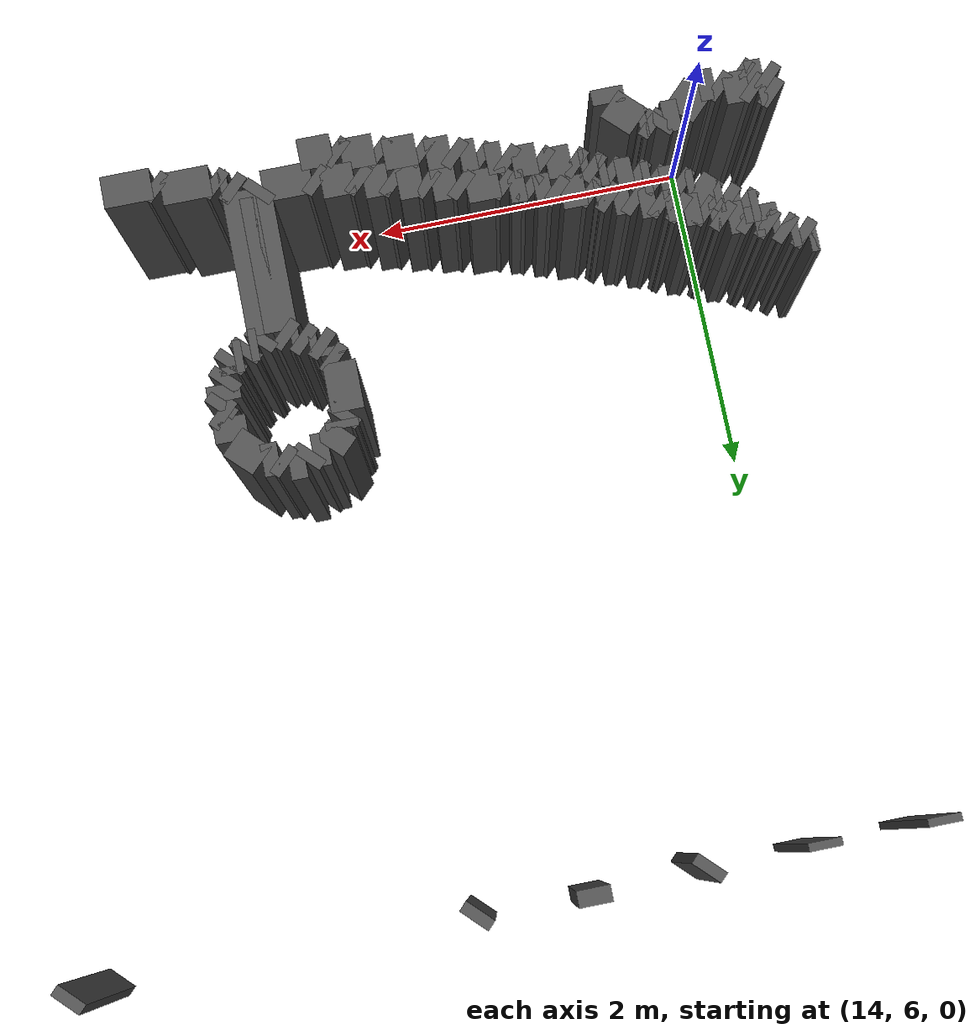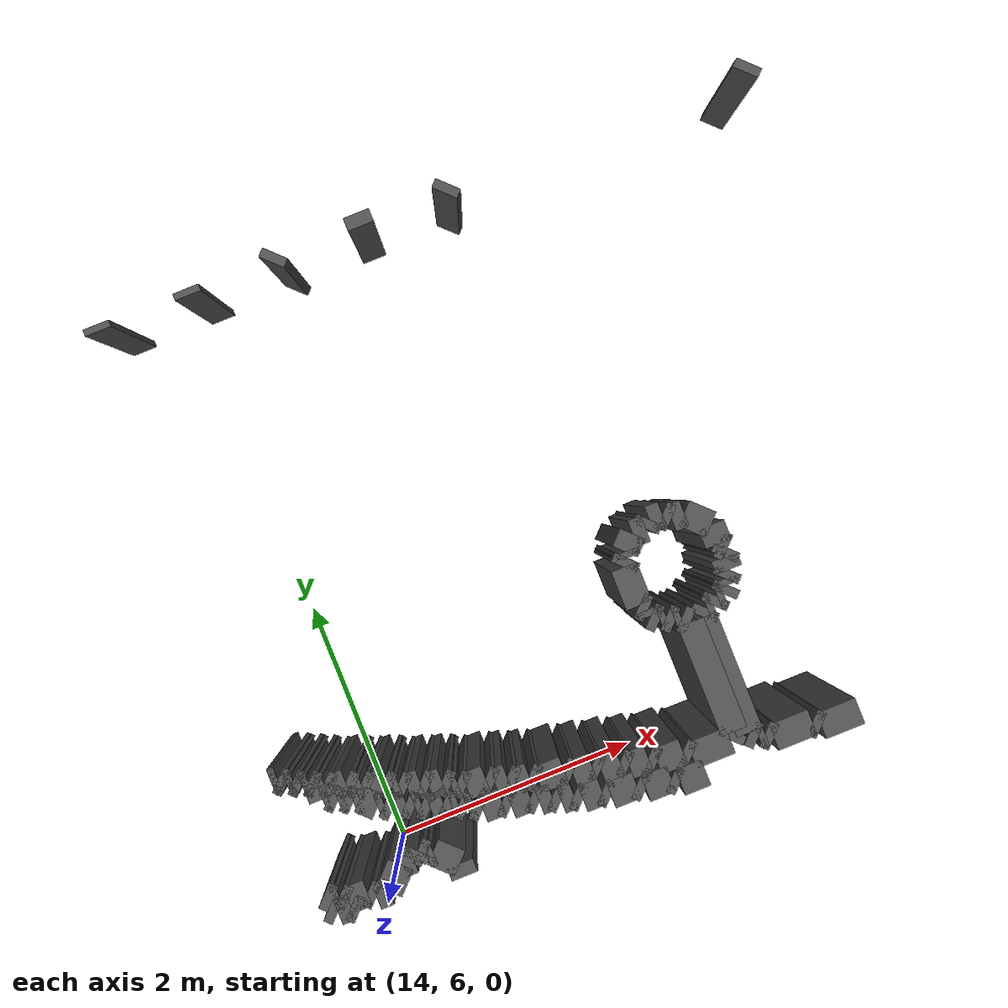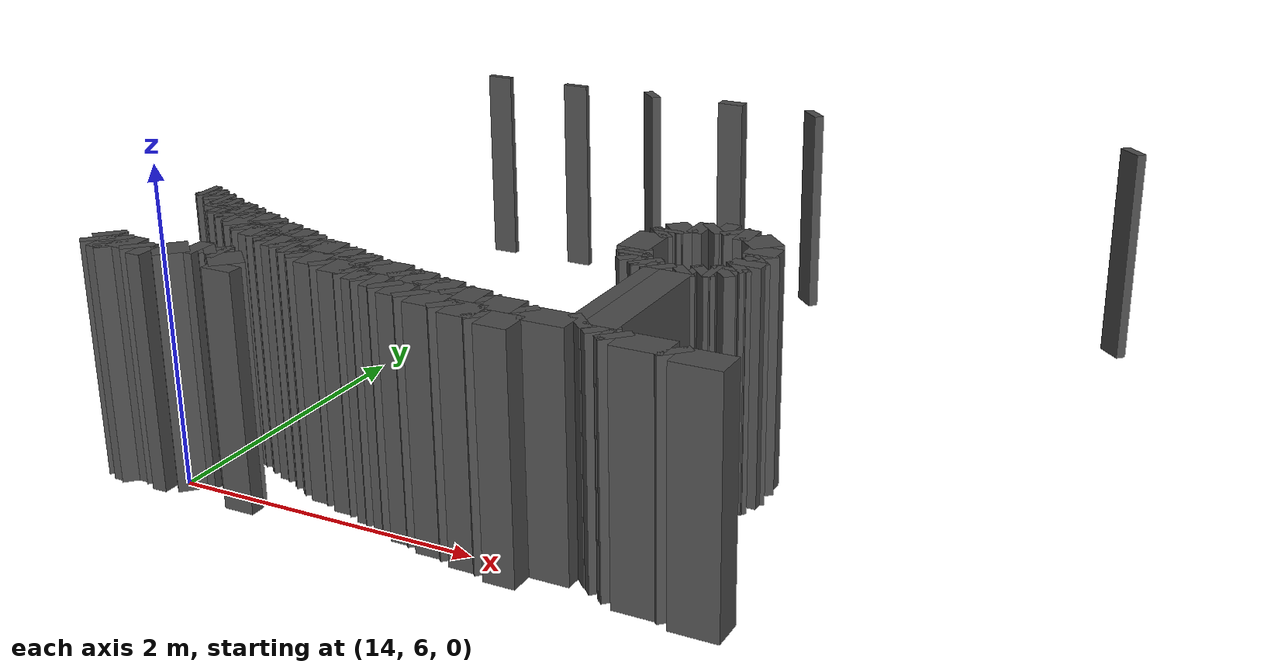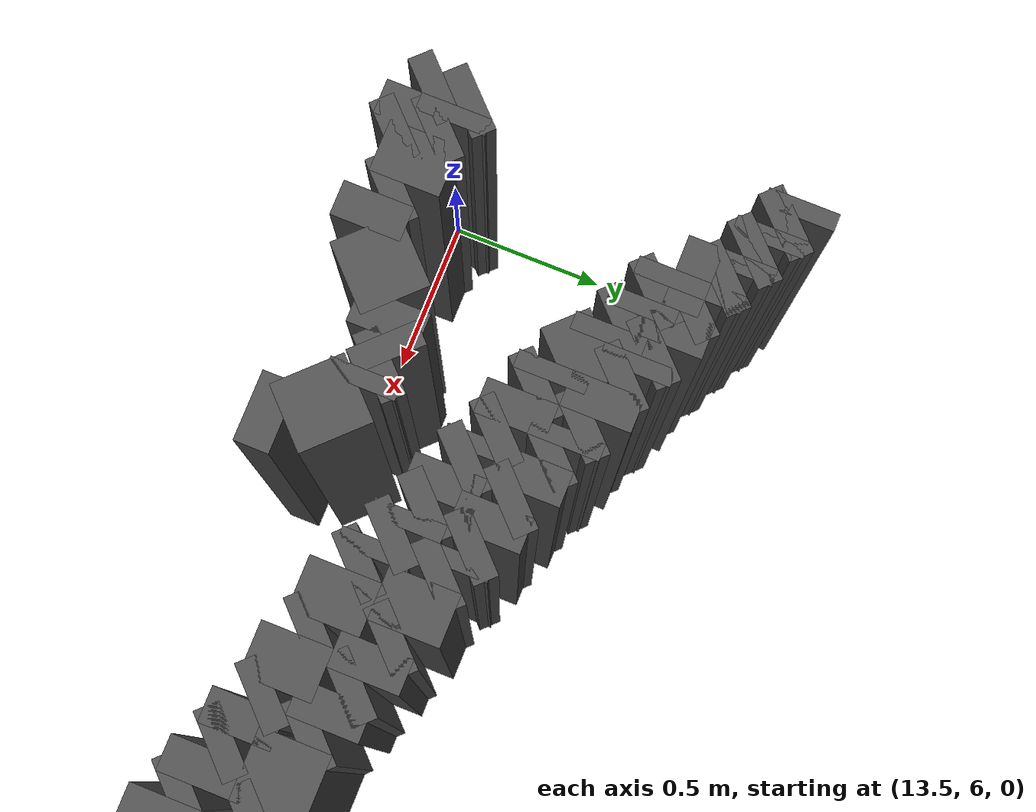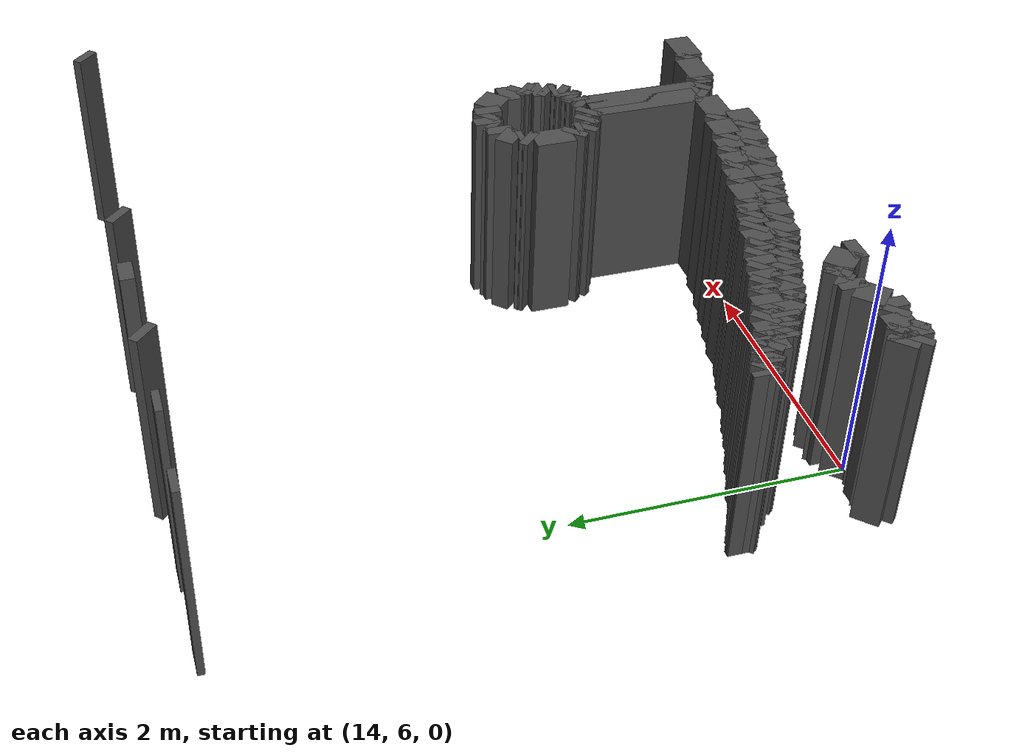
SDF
<sdf version="1.9">
 <model name="generated_walls">
  <static>true</static>
  <link name="wall_140_6">
   <pose>18.575 10.525 0.75 0 0 -2.356</pose>
   <collision name="collision"><geometry><box><size>0.071 0.2 1.5</size></box></geometry></collision>
   <visual name="visual">
    <geometry><box><size>0.071 0.2 1.5</size></box></geometry>
    <material><ambient>0.3 0.3 0.3 1</ambient></material>
   </visual>
  </link>
  <link name="wall_142_0">
   <pose>15.550 10.550 0.75 0 0 1.571</pose>
   <collision name="collision"><geometry><box><size>0.100 0.2 1.5</size></box></geometry></collision>
   <visual name="visual">
    <geometry><box><size>0.100 0.2 1.5</size></box></geometry>
    <material><ambient>0.3 0.3 0.3 1</ambient></material>
   </visual>
  </link>
  <link name="wall_142_3">
   <pose>16.225 10.525 0.75 0 0 -2.356</pose>
   <collision name="collision"><geometry><box><size>0.071 0.2 1.5</size></box></geometry></collision>
   <visual name="visual">
    <geometry><box><size>0.071 0.2 1.5</size></box></geometry>
    <material><ambient>0.3 0.3 0.3 1</ambient></material>
   </visual>
  </link>
  <link name="wall_143_0">
   <pose>14.200 10.525 0.75 0 0 1.571</pose>
   <collision name="collision"><geometry><box><size>0.050 0.2 1.5</size></box></geometry></collision>
   <visual name="visual">
    <geometry><box><size>0.050 0.2 1.5</size></box></geometry>
    <material><ambient>0.3 0.3 0.3 1</ambient></material>
   </visual>
  </link>
  <link name="wall_143_4">
   <pose>14.875 10.525 0.75 0 0 -2.356</pose>
   <collision name="collision"><geometry><box><size>0.071 0.2 1.5</size></box></geometry></collision>
   <visual name="visual">
    <geometry><box><size>0.071 0.2 1.5</size></box></geometry>
    <material><ambient>0.3 0.3 0.3 1</ambient></material>
   </visual>
  </link>
  <link name="wall_144_7">
   <pose>13.500 10.525 0.75 0 0 -1.571</pose>
   <collision name="collision"><geometry><box><size>0.050 0.2 1.5</size></box></geometry></collision>
   <visual name="visual">
    <geometry><box><size>0.050 0.2 1.5</size></box></geometry>
    <material><ambient>0.3 0.3 0.3 1</ambient></material>
   </visual>
  </link>
  <link name="wall_161_49">
   <pose>13.675 5.925 0.75 0 0 2.356</pose>
   <collision name="collision"><geometry><box><size>0.071 0.2 1.5</size></box></geometry></collision>
   <visual name="visual">
    <geometry><box><size>0.071 0.2 1.5</size></box></geometry>
    <material><ambient>0.3 0.3 0.3 1</ambient></material>
   </visual>
  </link>
  <link name="wall_161_50">
   <pose>13.600 5.950 0.75 0 0 3.142</pose>
   <collision name="collision"><geometry><box><size>0.100 0.2 1.5</size></box></geometry></collision>
   <visual name="visual">
    <geometry><box><size>0.100 0.2 1.5</size></box></geometry>
    <material><ambient>0.3 0.3 0.3 1</ambient></material>
   </visual>
  </link>
  <link name="wall_161_51">
   <pose>13.525 5.975 0.75 0 0 2.356</pose>
   <collision name="collision"><geometry><box><size>0.071 0.2 1.5</size></box></geometry></collision>
   <visual name="visual">
    <geometry><box><size>0.071 0.2 1.5</size></box></geometry>
    <material><ambient>0.3 0.3 0.3 1</ambient></material>
   </visual>
  </link>
  <link name="wall_161_1109">
   <pose>13.525 6.075 0.75 0 0 -0.785</pose>
   <collision name="collision"><geometry><box><size>0.071 0.2 1.5</size></box></geometry></collision>
   <visual name="visual">
    <geometry><box><size>0.071 0.2 1.5</size></box></geometry>
    <material><ambient>0.3 0.3 0.3 1</ambient></material>
   </visual>
  </link>
  <link name="wall_161_1110">
   <pose>13.575 6.050 0.75 0 0 0.000</pose>
   <collision name="collision"><geometry><box><size>0.050 0.2 1.5</size></box></geometry></collision>
   <visual name="visual">
    <geometry><box><size>0.050 0.2 1.5</size></box></geometry>
    <material><ambient>0.3 0.3 0.3 1</ambient></material>
   </visual>
  </link>
  <link name="wall_161_1111">
   <pose>13.625 6.025 0.75 0 0 -0.785</pose>
   <collision name="collision"><geometry><box><size>0.071 0.2 1.5</size></box></geometry></collision>
   <visual name="visual">
    <geometry><box><size>0.071 0.2 1.5</size></box></geometry>
    <material><ambient>0.3 0.3 0.3 1</ambient></material>
   </visual>
  </link>
  <link name="wall_161_1112">
   <pose>13.725 6.000 0.75 0 0 0.000</pose>
   <collision name="collision"><geometry><box><size>0.150 0.2 1.5</size></box></geometry></collision>
   <visual name="visual">
    <geometry><box><size>0.150 0.2 1.5</size></box></geometry>
    <material><ambient>0.3 0.3 0.3 1</ambient></material>
   </visual>
  </link>
  <link name="wall_161_1113">
   <pose>13.825 5.975 0.75 0 0 -0.785</pose>
   <collision name="collision"><geometry><box><size>0.071 0.2 1.5</size></box></geometry></collision>
   <visual name="visual">
    <geometry><box><size>0.071 0.2 1.5</size></box></geometry>
    <material><ambient>0.3 0.3 0.3 1</ambient></material>
   </visual>
  </link>
  <link name="wall_161_1114">
   <pose>13.900 5.950 0.75 0 0 0.000</pose>
   <collision name="collision"><geometry><box><size>0.100 0.2 1.5</size></box></geometry></collision>
   <visual name="visual">
    <geometry><box><size>0.100 0.2 1.5</size></box></geometry>
    <material><ambient>0.3 0.3 0.3 1</ambient></material>
   </visual>
  </link>
  <link name="wall_161_1115">
   <pose>14.025 6.025 0.75 0 0 0.785</pose>
   <collision name="collision"><geometry><box><size>0.212 0.2 1.5</size></box></geometry></collision>
   <visual name="visual">
    <geometry><box><size>0.212 0.2 1.5</size></box></geometry>
    <material><ambient>0.3 0.3 0.3 1</ambient></material>
   </visual>
  </link>
  <link name="wall_161_1116">
   <pose>14.150 6.100 0.75 0 0 0.000</pose>
   <collision name="collision"><geometry><box><size>0.100 0.2 1.5</size></box></geometry></collision>
   <visual name="visual">
    <geometry><box><size>0.100 0.2 1.5</size></box></geometry>
    <material><ambient>0.3 0.3 0.3 1</ambient></material>
   </visual>
  </link>
  <link name="wall_161_1117">
   <pose>14.225 6.125 0.75 0 0 0.785</pose>
   <collision name="collision"><geometry><box><size>0.071 0.2 1.5</size></box></geometry></collision>
   <visual name="visual">
    <geometry><box><size>0.071 0.2 1.5</size></box></geometry>
    <material><ambient>0.3 0.3 0.3 1</ambient></material>
   </visual>
  </link>
  <link name="wall_161_1118">
   <pose>14.275 6.125 0.75 0 0 -0.785</pose>
   <collision name="collision"><geometry><box><size>0.071 0.2 1.5</size></box></geometry></collision>
   <visual name="visual">
    <geometry><box><size>0.071 0.2 1.5</size></box></geometry>
    <material><ambient>0.3 0.3 0.3 1</ambient></material>
   </visual>
  </link>
  <link name="wall_161_1119">
   <pose>14.325 6.100 0.75 0 0 0.000</pose>
   <collision name="collision"><geometry><box><size>0.050 0.2 1.5</size></box></geometry></collision>
   <visual name="visual">
    <geometry><box><size>0.050 0.2 1.5</size></box></geometry>
    <material><ambient>0.3 0.3 0.3 1</ambient></material>
   </visual>
  </link>
  <link name="wall_161_1120">
   <pose>14.425 6.025 0.75 0 0 -0.785</pose>
   <collision name="collision"><geometry><box><size>0.212 0.2 1.5</size></box></geometry></collision>
   <visual name="visual">
    <geometry><box><size>0.212 0.2 1.5</size></box></geometry>
    <material><ambient>0.3 0.3 0.3 1</ambient></material>
   </visual>
  </link>
  <link name="wall_161_1121">
   <pose>14.500 5.900 0.75 0 0 -1.571</pose>
   <collision name="collision"><geometry><box><size>0.100 0.2 1.5</size></box></geometry></collision>
   <visual name="visual">
    <geometry><box><size>0.100 0.2 1.5</size></box></geometry>
    <material><ambient>0.3 0.3 0.3 1</ambient></material>
   </visual>
  </link>
  <link name="wall_161_1152">
   <pose>16.300 5.900 0.75 0 0 3.142</pose>
   <collision name="collision"><geometry><box><size>0.200 0.2 1.5</size></box></geometry></collision>
   <visual name="visual">
    <geometry><box><size>0.200 0.2 1.5</size></box></geometry>
    <material><ambient>0.3 0.3 0.3 1</ambient></material>
   </visual>
  </link>
  <link name="wall_161_1153">
   <pose>16.175 5.925 0.75 0 0 2.356</pose>
   <collision name="collision"><geometry><box><size>0.071 0.2 1.5</size></box></geometry></collision>
   <visual name="visual">
    <geometry><box><size>0.071 0.2 1.5</size></box></geometry>
    <material><ambient>0.3 0.3 0.3 1</ambient></material>
   </visual>
  </link>
  <link name="wall_161_1154">
   <pose>16.050 5.950 0.75 0 0 3.142</pose>
   <collision name="collision"><geometry><box><size>0.200 0.2 1.5</size></box></geometry></collision>
   <visual name="visual">
    <geometry><box><size>0.200 0.2 1.5</size></box></geometry>
    <material><ambient>0.3 0.3 0.3 1</ambient></material>
   </visual>
  </link>
  <link name="wall_161_1155">
   <pose>15.925 5.975 0.75 0 0 2.356</pose>
   <collision name="collision"><geometry><box><size>0.071 0.2 1.5</size></box></geometry></collision>
   <visual name="visual">
    <geometry><box><size>0.071 0.2 1.5</size></box></geometry>
    <material><ambient>0.3 0.3 0.3 1</ambient></material>
   </visual>
  </link>
  <link name="wall_161_1156">
   <pose>15.800 6.000 0.75 0 0 3.142</pose>
   <collision name="collision"><geometry><box><size>0.200 0.2 1.5</size></box></geometry></collision>
   <visual name="visual">
    <geometry><box><size>0.200 0.2 1.5</size></box></geometry>
    <material><ambient>0.3 0.3 0.3 1</ambient></material>
   </visual>
  </link>
  <link name="wall_161_1157">
   <pose>15.675 6.025 0.75 0 0 2.356</pose>
   <collision name="collision"><geometry><box><size>0.071 0.2 1.5</size></box></geometry></collision>
   <visual name="visual">
    <geometry><box><size>0.071 0.2 1.5</size></box></geometry>
    <material><ambient>0.3 0.3 0.3 1</ambient></material>
   </visual>
  </link>
  <link name="wall_161_1158">
   <pose>15.575 6.050 0.75 0 0 3.142</pose>
   <collision name="collision"><geometry><box><size>0.150 0.2 1.5</size></box></geometry></collision>
   <visual name="visual">
    <geometry><box><size>0.150 0.2 1.5</size></box></geometry>
    <material><ambient>0.3 0.3 0.3 1</ambient></material>
   </visual>
  </link>
  <link name="wall_161_1159">
   <pose>15.475 6.075 0.75 0 0 2.356</pose>
   <collision name="collision"><geometry><box><size>0.071 0.2 1.5</size></box></geometry></collision>
   <visual name="visual">
    <geometry><box><size>0.071 0.2 1.5</size></box></geometry>
    <material><ambient>0.3 0.3 0.3 1</ambient></material>
   </visual>
  </link>
  <link name="wall_161_1160">
   <pose>15.400 6.100 0.75 0 0 3.142</pose>
   <collision name="collision"><geometry><box><size>0.100 0.2 1.5</size></box></geometry></collision>
   <visual name="visual">
    <geometry><box><size>0.100 0.2 1.5</size></box></geometry>
    <material><ambient>0.3 0.3 0.3 1</ambient></material>
   </visual>
  </link>
  <link name="wall_161_1161">
   <pose>15.325 6.125 0.75 0 0 2.356</pose>
   <collision name="collision"><geometry><box><size>0.071 0.2 1.5</size></box></geometry></collision>
   <visual name="visual">
    <geometry><box><size>0.071 0.2 1.5</size></box></geometry>
    <material><ambient>0.3 0.3 0.3 1</ambient></material>
   </visual>
  </link>
  <link name="wall_161_1162">
   <pose>15.250 6.150 0.75 0 0 3.142</pose>
   <collision name="collision"><geometry><box><size>0.100 0.2 1.5</size></box></geometry></collision>
   <visual name="visual">
    <geometry><box><size>0.100 0.2 1.5</size></box></geometry>
    <material><ambient>0.3 0.3 0.3 1</ambient></material>
   </visual>
  </link>
  <link name="wall_161_1163">
   <pose>15.175 6.175 0.75 0 0 2.356</pose>
   <collision name="collision"><geometry><box><size>0.071 0.2 1.5</size></box></geometry></collision>
   <visual name="visual">
    <geometry><box><size>0.071 0.2 1.5</size></box></geometry>
    <material><ambient>0.3 0.3 0.3 1</ambient></material>
   </visual>
  </link>
  <link name="wall_161_1164">
   <pose>15.075 6.200 0.75 0 0 3.142</pose>
   <collision name="collision"><geometry><box><size>0.150 0.2 1.5</size></box></geometry></collision>
   <visual name="visual">
    <geometry><box><size>0.150 0.2 1.5</size></box></geometry>
    <material><ambient>0.3 0.3 0.3 1</ambient></material>
   </visual>
  </link>
  <link name="wall_161_1165">
   <pose>14.975 6.225 0.75 0 0 2.356</pose>
   <collision name="collision"><geometry><box><size>0.071 0.2 1.5</size></box></geometry></collision>
   <visual name="visual">
    <geometry><box><size>0.071 0.2 1.5</size></box></geometry>
    <material><ambient>0.3 0.3 0.3 1</ambient></material>
   </visual>
  </link>
  <link name="wall_161_1166">
   <pose>14.875 6.250 0.75 0 0 3.142</pose>
   <collision name="collision"><geometry><box><size>0.150 0.2 1.5</size></box></geometry></collision>
   <visual name="visual">
    <geometry><box><size>0.150 0.2 1.5</size></box></geometry>
    <material><ambient>0.3 0.3 0.3 1</ambient></material>
   </visual>
  </link>
  <link name="wall_161_1167">
   <pose>14.775 6.275 0.75 0 0 2.356</pose>
   <collision name="collision"><geometry><box><size>0.071 0.2 1.5</size></box></geometry></collision>
   <visual name="visual">
    <geometry><box><size>0.071 0.2 1.5</size></box></geometry>
    <material><ambient>0.3 0.3 0.3 1</ambient></material>
   </visual>
  </link>
  <link name="wall_161_1168">
   <pose>14.725 6.300 0.75 0 0 3.142</pose>
   <collision name="collision"><geometry><box><size>0.050 0.2 1.5</size></box></geometry></collision>
   <visual name="visual">
    <geometry><box><size>0.050 0.2 1.5</size></box></geometry>
    <material><ambient>0.3 0.3 0.3 1</ambient></material>
   </visual>
  </link>
  <link name="wall_161_1169">
   <pose>14.675 6.325 0.75 0 0 2.356</pose>
   <collision name="collision"><geometry><box><size>0.071 0.2 1.5</size></box></geometry></collision>
   <visual name="visual">
    <geometry><box><size>0.071 0.2 1.5</size></box></geometry>
    <material><ambient>0.3 0.3 0.3 1</ambient></material>
   </visual>
  </link>
  <link name="wall_161_1170">
   <pose>14.625 6.350 0.75 0 0 3.142</pose>
   <collision name="collision"><geometry><box><size>0.050 0.2 1.5</size></box></geometry></collision>
   <visual name="visual">
    <geometry><box><size>0.050 0.2 1.5</size></box></geometry>
    <material><ambient>0.3 0.3 0.3 1</ambient></material>
   </visual>
  </link>
  <link name="wall_161_1171">
   <pose>14.575 6.375 0.75 0 0 2.356</pose>
   <collision name="collision"><geometry><box><size>0.071 0.2 1.5</size></box></geometry></collision>
   <visual name="visual">
    <geometry><box><size>0.071 0.2 1.5</size></box></geometry>
    <material><ambient>0.3 0.3 0.3 1</ambient></material>
   </visual>
  </link>
  <link name="wall_161_1172">
   <pose>14.500 6.400 0.75 0 0 3.142</pose>
   <collision name="collision"><geometry><box><size>0.100 0.2 1.5</size></box></geometry></collision>
   <visual name="visual">
    <geometry><box><size>0.100 0.2 1.5</size></box></geometry>
    <material><ambient>0.3 0.3 0.3 1</ambient></material>
   </visual>
  </link>
  <link name="wall_161_1173">
   <pose>14.425 6.425 0.75 0 0 2.356</pose>
   <collision name="collision"><geometry><box><size>0.071 0.2 1.5</size></box></geometry></collision>
   <visual name="visual">
    <geometry><box><size>0.071 0.2 1.5</size></box></geometry>
    <material><ambient>0.3 0.3 0.3 1</ambient></material>
   </visual>
  </link>
  <link name="wall_161_1174">
   <pose>14.375 6.450 0.75 0 0 3.142</pose>
   <collision name="collision"><geometry><box><size>0.050 0.2 1.5</size></box></geometry></collision>
   <visual name="visual">
    <geometry><box><size>0.050 0.2 1.5</size></box></geometry>
    <material><ambient>0.3 0.3 0.3 1</ambient></material>
   </visual>
  </link>
  <link name="wall_161_1175">
   <pose>14.325 6.475 0.75 0 0 2.356</pose>
   <collision name="collision"><geometry><box><size>0.071 0.2 1.5</size></box></geometry></collision>
   <visual name="visual">
    <geometry><box><size>0.071 0.2 1.5</size></box></geometry>
    <material><ambient>0.3 0.3 0.3 1</ambient></material>
   </visual>
  </link>
  <link name="wall_161_1176">
   <pose>14.250 6.500 0.75 0 0 3.142</pose>
   <collision name="collision"><geometry><box><size>0.100 0.2 1.5</size></box></geometry></collision>
   <visual name="visual">
    <geometry><box><size>0.100 0.2 1.5</size></box></geometry>
    <material><ambient>0.3 0.3 0.3 1</ambient></material>
   </visual>
  </link>
  <link name="wall_161_1177">
   <pose>14.175 6.525 0.75 0 0 2.356</pose>
   <collision name="collision"><geometry><box><size>0.071 0.2 1.5</size></box></geometry></collision>
   <visual name="visual">
    <geometry><box><size>0.071 0.2 1.5</size></box></geometry>
    <material><ambient>0.3 0.3 0.3 1</ambient></material>
   </visual>
  </link>
  <link name="wall_161_1178">
   <pose>14.125 6.550 0.75 0 0 3.142</pose>
   <collision name="collision"><geometry><box><size>0.050 0.2 1.5</size></box></geometry></collision>
   <visual name="visual">
    <geometry><box><size>0.050 0.2 1.5</size></box></geometry>
    <material><ambient>0.3 0.3 0.3 1</ambient></material>
   </visual>
  </link>
  <link name="wall_161_1179">
   <pose>14.050 6.600 0.75 0 0 2.356</pose>
   <collision name="collision"><geometry><box><size>0.141 0.2 1.5</size></box></geometry></collision>
   <visual name="visual">
    <geometry><box><size>0.141 0.2 1.5</size></box></geometry>
    <material><ambient>0.3 0.3 0.3 1</ambient></material>
   </visual>
  </link>
  <link name="wall_161_1180">
   <pose>13.975 6.650 0.75 0 0 3.142</pose>
   <collision name="collision"><geometry><box><size>0.050 0.2 1.5</size></box></geometry></collision>
   <visual name="visual">
    <geometry><box><size>0.050 0.2 1.5</size></box></geometry>
    <material><ambient>0.3 0.3 0.3 1</ambient></material>
   </visual>
  </link>
  <link name="wall_161_1181">
   <pose>13.925 6.675 0.75 0 0 2.356</pose>
   <collision name="collision"><geometry><box><size>0.071 0.2 1.5</size></box></geometry></collision>
   <visual name="visual">
    <geometry><box><size>0.071 0.2 1.5</size></box></geometry>
    <material><ambient>0.3 0.3 0.3 1</ambient></material>
   </visual>
  </link>
  <link name="wall_161_1182">
   <pose>13.875 6.700 0.75 0 0 3.142</pose>
   <collision name="collision"><geometry><box><size>0.050 0.2 1.5</size></box></geometry></collision>
   <visual name="visual">
    <geometry><box><size>0.050 0.2 1.5</size></box></geometry>
    <material><ambient>0.3 0.3 0.3 1</ambient></material>
   </visual>
  </link>
  <link name="wall_161_1183">
   <pose>13.825 6.725 0.75 0 0 2.356</pose>
   <collision name="collision"><geometry><box><size>0.071 0.2 1.5</size></box></geometry></collision>
   <visual name="visual">
    <geometry><box><size>0.071 0.2 1.5</size></box></geometry>
    <material><ambient>0.3 0.3 0.3 1</ambient></material>
   </visual>
  </link>
  <link name="wall_161_1184">
   <pose>13.775 6.750 0.75 0 0 3.142</pose>
   <collision name="collision"><geometry><box><size>0.050 0.2 1.5</size></box></geometry></collision>
   <visual name="visual">
    <geometry><box><size>0.050 0.2 1.5</size></box></geometry>
    <material><ambient>0.3 0.3 0.3 1</ambient></material>
   </visual>
  </link>
  <link name="wall_161_1185">
   <pose>13.750 6.800 0.75 0 0 1.571</pose>
   <collision name="collision"><geometry><box><size>0.100 0.2 1.5</size></box></geometry></collision>
   <visual name="visual">
    <geometry><box><size>0.100 0.2 1.5</size></box></geometry>
    <material><ambient>0.3 0.3 0.3 1</ambient></material>
   </visual>
  </link>
  <link name="wall_161_1186">
   <pose>13.725 6.875 0.75 0 0 2.356</pose>
   <collision name="collision"><geometry><box><size>0.071 0.2 1.5</size></box></geometry></collision>
   <visual name="visual">
    <geometry><box><size>0.071 0.2 1.5</size></box></geometry>
    <material><ambient>0.3 0.3 0.3 1</ambient></material>
   </visual>
  </link>
  <link name="wall_161_1187">
   <pose>13.675 6.900 0.75 0 0 3.142</pose>
   <collision name="collision"><geometry><box><size>0.050 0.2 1.5</size></box></geometry></collision>
   <visual name="visual">
    <geometry><box><size>0.050 0.2 1.5</size></box></geometry>
    <material><ambient>0.3 0.3 0.3 1</ambient></material>
   </visual>
  </link>
  <link name="wall_161_1188">
   <pose>13.625 6.925 0.75 0 0 2.356</pose>
   <collision name="collision"><geometry><box><size>0.071 0.2 1.5</size></box></geometry></collision>
   <visual name="visual">
    <geometry><box><size>0.071 0.2 1.5</size></box></geometry>
    <material><ambient>0.3 0.3 0.3 1</ambient></material>
   </visual>
  </link>
  <link name="wall_161_1189">
   <pose>13.575 6.950 0.75 0 0 3.142</pose>
   <collision name="collision"><geometry><box><size>0.050 0.2 1.5</size></box></geometry></collision>
   <visual name="visual">
    <geometry><box><size>0.050 0.2 1.5</size></box></geometry>
    <material><ambient>0.3 0.3 0.3 1</ambient></material>
   </visual>
  </link>
  <link name="wall_161_1190">
   <pose>13.525 6.975 0.75 0 0 2.356</pose>
   <collision name="collision"><geometry><box><size>0.071 0.2 1.5</size></box></geometry></collision>
   <visual name="visual">
    <geometry><box><size>0.071 0.2 1.5</size></box></geometry>
    <material><ambient>0.3 0.3 0.3 1</ambient></material>
   </visual>
  </link>
  <link name="wall_161_1191">
   <pose>13.475 7.000 0.75 0 0 3.142</pose>
   <collision name="collision"><geometry><box><size>0.050 0.2 1.5</size></box></geometry></collision>
   <visual name="visual">
    <geometry><box><size>0.050 0.2 1.5</size></box></geometry>
    <material><ambient>0.3 0.3 0.3 1</ambient></material>
   </visual>
  </link>
  <link name="wall_161_1192">
   <pose>13.475 7.000 0.75 0 0 0.000</pose>
   <collision name="collision"><geometry><box><size>0.050 0.2 1.5</size></box></geometry></collision>
   <visual name="visual">
    <geometry><box><size>0.050 0.2 1.5</size></box></geometry>
    <material><ambient>0.3 0.3 0.3 1</ambient></material>
   </visual>
  </link>
  <link name="wall_161_1193">
   <pose>13.525 6.975 0.75 0 0 -0.785</pose>
   <collision name="collision"><geometry><box><size>0.071 0.2 1.5</size></box></geometry></collision>
   <visual name="visual">
    <geometry><box><size>0.071 0.2 1.5</size></box></geometry>
    <material><ambient>0.3 0.3 0.3 1</ambient></material>
   </visual>
  </link>
  <link name="wall_161_1194">
   <pose>13.575 6.950 0.75 0 0 0.000</pose>
   <collision name="collision"><geometry><box><size>0.050 0.2 1.5</size></box></geometry></collision>
   <visual name="visual">
    <geometry><box><size>0.050 0.2 1.5</size></box></geometry>
    <material><ambient>0.3 0.3 0.3 1</ambient></material>
   </visual>
  </link>
  <link name="wall_161_1195">
   <pose>13.625 6.925 0.75 0 0 -0.785</pose>
   <collision name="collision"><geometry><box><size>0.071 0.2 1.5</size></box></geometry></collision>
   <visual name="visual">
    <geometry><box><size>0.071 0.2 1.5</size></box></geometry>
    <material><ambient>0.3 0.3 0.3 1</ambient></material>
   </visual>
  </link>
  <link name="wall_161_1196">
   <pose>13.675 6.900 0.75 0 0 0.000</pose>
   <collision name="collision"><geometry><box><size>0.050 0.2 1.5</size></box></geometry></collision>
   <visual name="visual">
    <geometry><box><size>0.050 0.2 1.5</size></box></geometry>
    <material><ambient>0.3 0.3 0.3 1</ambient></material>
   </visual>
  </link>
  <link name="wall_161_1197">
   <pose>13.725 6.875 0.75 0 0 -0.785</pose>
   <collision name="collision"><geometry><box><size>0.071 0.2 1.5</size></box></geometry></collision>
   <visual name="visual">
    <geometry><box><size>0.071 0.2 1.5</size></box></geometry>
    <material><ambient>0.3 0.3 0.3 1</ambient></material>
   </visual>
  </link>
  <link name="wall_161_1198">
   <pose>13.775 6.850 0.75 0 0 0.000</pose>
   <collision name="collision"><geometry><box><size>0.050 0.2 1.5</size></box></geometry></collision>
   <visual name="visual">
    <geometry><box><size>0.050 0.2 1.5</size></box></geometry>
    <material><ambient>0.3 0.3 0.3 1</ambient></material>
   </visual>
  </link>
  <link name="wall_161_1199">
   <pose>13.825 6.825 0.75 0 0 -0.785</pose>
   <collision name="collision"><geometry><box><size>0.071 0.2 1.5</size></box></geometry></collision>
   <visual name="visual">
    <geometry><box><size>0.071 0.2 1.5</size></box></geometry>
    <material><ambient>0.3 0.3 0.3 1</ambient></material>
   </visual>
  </link>
  <link name="wall_161_1200">
   <pose>13.900 6.800 0.75 0 0 0.000</pose>
   <collision name="collision"><geometry><box><size>0.100 0.2 1.5</size></box></geometry></collision>
   <visual name="visual">
    <geometry><box><size>0.100 0.2 1.5</size></box></geometry>
    <material><ambient>0.3 0.3 0.3 1</ambient></material>
   </visual>
  </link>
  <link name="wall_161_1201">
   <pose>13.975 6.775 0.75 0 0 -0.785</pose>
   <collision name="collision"><geometry><box><size>0.071 0.2 1.5</size></box></geometry></collision>
   <visual name="visual">
    <geometry><box><size>0.071 0.2 1.5</size></box></geometry>
    <material><ambient>0.3 0.3 0.3 1</ambient></material>
   </visual>
  </link>
  <link name="wall_161_1202">
   <pose>14.025 6.750 0.75 0 0 0.000</pose>
   <collision name="collision"><geometry><box><size>0.050 0.2 1.5</size></box></geometry></collision>
   <visual name="visual">
    <geometry><box><size>0.050 0.2 1.5</size></box></geometry>
    <material><ambient>0.3 0.3 0.3 1</ambient></material>
   </visual>
  </link>
  <link name="wall_161_1203">
   <pose>14.075 6.725 0.75 0 0 -0.785</pose>
   <collision name="collision"><geometry><box><size>0.071 0.2 1.5</size></box></geometry></collision>
   <visual name="visual">
    <geometry><box><size>0.071 0.2 1.5</size></box></geometry>
    <material><ambient>0.3 0.3 0.3 1</ambient></material>
   </visual>
  </link>
  <link name="wall_161_1204">
   <pose>14.150 6.700 0.75 0 0 0.000</pose>
   <collision name="collision"><geometry><box><size>0.100 0.2 1.5</size></box></geometry></collision>
   <visual name="visual">
    <geometry><box><size>0.100 0.2 1.5</size></box></geometry>
    <material><ambient>0.3 0.3 0.3 1</ambient></material>
   </visual>
  </link>
  <link name="wall_161_1205">
   <pose>14.225 6.675 0.75 0 0 -0.785</pose>
   <collision name="collision"><geometry><box><size>0.071 0.2 1.5</size></box></geometry></collision>
   <visual name="visual">
    <geometry><box><size>0.071 0.2 1.5</size></box></geometry>
    <material><ambient>0.3 0.3 0.3 1</ambient></material>
   </visual>
  </link>
  <link name="wall_161_1206">
   <pose>14.275 6.650 0.75 0 0 0.000</pose>
   <collision name="collision"><geometry><box><size>0.050 0.2 1.5</size></box></geometry></collision>
   <visual name="visual">
    <geometry><box><size>0.050 0.2 1.5</size></box></geometry>
    <material><ambient>0.3 0.3 0.3 1</ambient></material>
   </visual>
  </link>
  <link name="wall_161_1207">
   <pose>14.325 6.625 0.75 0 0 -0.785</pose>
   <collision name="collision"><geometry><box><size>0.071 0.2 1.5</size></box></geometry></collision>
   <visual name="visual">
    <geometry><box><size>0.071 0.2 1.5</size></box></geometry>
    <material><ambient>0.3 0.3 0.3 1</ambient></material>
   </visual>
  </link>
  <link name="wall_161_1208">
   <pose>14.400 6.600 0.75 0 0 0.000</pose>
   <collision name="collision"><geometry><box><size>0.100 0.2 1.5</size></box></geometry></collision>
   <visual name="visual">
    <geometry><box><size>0.100 0.2 1.5</size></box></geometry>
    <material><ambient>0.3 0.3 0.3 1</ambient></material>
   </visual>
  </link>
  <link name="wall_161_1209">
   <pose>14.475 6.575 0.75 0 0 -0.785</pose>
   <collision name="collision"><geometry><box><size>0.071 0.2 1.5</size></box></geometry></collision>
   <visual name="visual">
    <geometry><box><size>0.071 0.2 1.5</size></box></geometry>
    <material><ambient>0.3 0.3 0.3 1</ambient></material>
   </visual>
  </link>
  <link name="wall_161_1210">
   <pose>14.550 6.550 0.75 0 0 0.000</pose>
   <collision name="collision"><geometry><box><size>0.100 0.2 1.5</size></box></geometry></collision>
   <visual name="visual">
    <geometry><box><size>0.100 0.2 1.5</size></box></geometry>
    <material><ambient>0.3 0.3 0.3 1</ambient></material>
   </visual>
  </link>
  <link name="wall_161_1211">
   <pose>14.625 6.525 0.75 0 0 -0.785</pose>
   <collision name="collision"><geometry><box><size>0.071 0.2 1.5</size></box></geometry></collision>
   <visual name="visual">
    <geometry><box><size>0.071 0.2 1.5</size></box></geometry>
    <material><ambient>0.3 0.3 0.3 1</ambient></material>
   </visual>
  </link>
  <link name="wall_161_1212">
   <pose>14.675 6.500 0.75 0 0 0.000</pose>
   <collision name="collision"><geometry><box><size>0.050 0.2 1.5</size></box></geometry></collision>
   <visual name="visual">
    <geometry><box><size>0.050 0.2 1.5</size></box></geometry>
    <material><ambient>0.3 0.3 0.3 1</ambient></material>
   </visual>
  </link>
  <link name="wall_161_1213">
   <pose>14.725 6.475 0.75 0 0 -0.785</pose>
   <collision name="collision"><geometry><box><size>0.071 0.2 1.5</size></box></geometry></collision>
   <visual name="visual">
    <geometry><box><size>0.071 0.2 1.5</size></box></geometry>
    <material><ambient>0.3 0.3 0.3 1</ambient></material>
   </visual>
  </link>
  <link name="wall_161_1214">
   <pose>14.825 6.450 0.75 0 0 0.000</pose>
   <collision name="collision"><geometry><box><size>0.150 0.2 1.5</size></box></geometry></collision>
   <visual name="visual">
    <geometry><box><size>0.150 0.2 1.5</size></box></geometry>
    <material><ambient>0.3 0.3 0.3 1</ambient></material>
   </visual>
  </link>
  <link name="wall_161_1215">
   <pose>14.925 6.425 0.75 0 0 -0.785</pose>
   <collision name="collision"><geometry><box><size>0.071 0.2 1.5</size></box></geometry></collision>
   <visual name="visual">
    <geometry><box><size>0.071 0.2 1.5</size></box></geometry>
    <material><ambient>0.3 0.3 0.3 1</ambient></material>
   </visual>
  </link>
  <link name="wall_161_1216">
   <pose>15.000 6.400 0.75 0 0 0.000</pose>
   <collision name="collision"><geometry><box><size>0.100 0.2 1.5</size></box></geometry></collision>
   <visual name="visual">
    <geometry><box><size>0.100 0.2 1.5</size></box></geometry>
    <material><ambient>0.3 0.3 0.3 1</ambient></material>
   </visual>
  </link>
  <link name="wall_161_1217">
   <pose>15.075 6.375 0.75 0 0 -0.785</pose>
   <collision name="collision"><geometry><box><size>0.071 0.2 1.5</size></box></geometry></collision>
   <visual name="visual">
    <geometry><box><size>0.071 0.2 1.5</size></box></geometry>
    <material><ambient>0.3 0.3 0.3 1</ambient></material>
   </visual>
  </link>
  <link name="wall_161_1218">
   <pose>15.150 6.350 0.75 0 0 0.000</pose>
   <collision name="collision"><geometry><box><size>0.100 0.2 1.5</size></box></geometry></collision>
   <visual name="visual">
    <geometry><box><size>0.100 0.2 1.5</size></box></geometry>
    <material><ambient>0.3 0.3 0.3 1</ambient></material>
   </visual>
  </link>
  <link name="wall_161_1219">
   <pose>15.225 6.325 0.75 0 0 -0.785</pose>
   <collision name="collision"><geometry><box><size>0.071 0.2 1.5</size></box></geometry></collision>
   <visual name="visual">
    <geometry><box><size>0.071 0.2 1.5</size></box></geometry>
    <material><ambient>0.3 0.3 0.3 1</ambient></material>
   </visual>
  </link>
  <link name="wall_161_1220">
   <pose>15.350 6.300 0.75 0 0 0.000</pose>
   <collision name="collision"><geometry><box><size>0.200 0.2 1.5</size></box></geometry></collision>
   <visual name="visual">
    <geometry><box><size>0.200 0.2 1.5</size></box></geometry>
    <material><ambient>0.3 0.3 0.3 1</ambient></material>
   </visual>
  </link>
  <link name="wall_161_1221">
   <pose>15.475 6.275 0.75 0 0 -0.785</pose>
   <collision name="collision"><geometry><box><size>0.071 0.2 1.5</size></box></geometry></collision>
   <visual name="visual">
    <geometry><box><size>0.071 0.2 1.5</size></box></geometry>
    <material><ambient>0.3 0.3 0.3 1</ambient></material>
   </visual>
  </link>
  <link name="wall_161_1222">
   <pose>15.575 6.250 0.75 0 0 0.000</pose>
   <collision name="collision"><geometry><box><size>0.150 0.2 1.5</size></box></geometry></collision>
   <visual name="visual">
    <geometry><box><size>0.150 0.2 1.5</size></box></geometry>
    <material><ambient>0.3 0.3 0.3 1</ambient></material>
   </visual>
  </link>
  <link name="wall_161_1223">
   <pose>15.675 6.225 0.75 0 0 -0.785</pose>
   <collision name="collision"><geometry><box><size>0.071 0.2 1.5</size></box></geometry></collision>
   <visual name="visual">
    <geometry><box><size>0.071 0.2 1.5</size></box></geometry>
    <material><ambient>0.3 0.3 0.3 1</ambient></material>
   </visual>
  </link>
  <link name="wall_161_1224">
   <pose>15.775 6.200 0.75 0 0 0.000</pose>
   <collision name="collision"><geometry><box><size>0.150 0.2 1.5</size></box></geometry></collision>
   <visual name="visual">
    <geometry><box><size>0.150 0.2 1.5</size></box></geometry>
    <material><ambient>0.3 0.3 0.3 1</ambient></material>
   </visual>
  </link>
  <link name="wall_161_1225">
   <pose>15.875 6.175 0.75 0 0 -0.785</pose>
   <collision name="collision"><geometry><box><size>0.071 0.2 1.5</size></box></geometry></collision>
   <visual name="visual">
    <geometry><box><size>0.071 0.2 1.5</size></box></geometry>
    <material><ambient>0.3 0.3 0.3 1</ambient></material>
   </visual>
  </link>
  <link name="wall_161_1226">
   <pose>15.975 6.150 0.75 0 0 0.000</pose>
   <collision name="collision"><geometry><box><size>0.150 0.2 1.5</size></box></geometry></collision>
   <visual name="visual">
    <geometry><box><size>0.150 0.2 1.5</size></box></geometry>
    <material><ambient>0.3 0.3 0.3 1</ambient></material>
   </visual>
  </link>
  <link name="wall_161_1227">
   <pose>16.075 6.125 0.75 0 0 -0.785</pose>
   <collision name="collision"><geometry><box><size>0.071 0.2 1.5</size></box></geometry></collision>
   <visual name="visual">
    <geometry><box><size>0.071 0.2 1.5</size></box></geometry>
    <material><ambient>0.3 0.3 0.3 1</ambient></material>
   </visual>
  </link>
  <link name="wall_161_1228">
   <pose>16.200 6.100 0.75 0 0 0.000</pose>
   <collision name="collision"><geometry><box><size>0.200 0.2 1.5</size></box></geometry></collision>
   <visual name="visual">
    <geometry><box><size>0.200 0.2 1.5</size></box></geometry>
    <material><ambient>0.3 0.3 0.3 1</ambient></material>
   </visual>
  </link>
  <link name="wall_161_1229">
   <pose>16.325 6.075 0.75 0 0 -0.785</pose>
   <collision name="collision"><geometry><box><size>0.071 0.2 1.5</size></box></geometry></collision>
   <visual name="visual">
    <geometry><box><size>0.071 0.2 1.5</size></box></geometry>
    <material><ambient>0.3 0.3 0.3 1</ambient></material>
   </visual>
  </link>
  <link name="wall_161_1230">
   <pose>16.500 6.050 0.75 0 0 0.000</pose>
   <collision name="collision"><geometry><box><size>0.300 0.2 1.5</size></box></geometry></collision>
   <visual name="visual">
    <geometry><box><size>0.300 0.2 1.5</size></box></geometry>
    <material><ambient>0.3 0.3 0.3 1</ambient></material>
   </visual>
  </link>
  <link name="wall_161_1231">
   <pose>16.675 6.075 0.75 0 0 0.785</pose>
   <collision name="collision"><geometry><box><size>0.071 0.2 1.5</size></box></geometry></collision>
   <visual name="visual">
    <geometry><box><size>0.071 0.2 1.5</size></box></geometry>
    <material><ambient>0.3 0.3 0.3 1</ambient></material>
   </visual>
  </link>
  <link name="wall_161_1232">
   <pose>16.700 6.525 0.75 0 0 1.571</pose>
   <collision name="collision"><geometry><box><size>0.850 0.2 1.5</size></box></geometry></collision>
   <visual name="visual">
    <geometry><box><size>0.850 0.2 1.5</size></box></geometry>
    <material><ambient>0.3 0.3 0.3 1</ambient></material>
   </visual>
  </link>
  <link name="wall_161_1233">
   <pose>16.675 6.975 0.75 0 0 2.356</pose>
   <collision name="collision"><geometry><box><size>0.071 0.2 1.5</size></box></geometry></collision>
   <visual name="visual">
    <geometry><box><size>0.071 0.2 1.5</size></box></geometry>
    <material><ambient>0.3 0.3 0.3 1</ambient></material>
   </visual>
  </link>
  <link name="wall_161_1234">
   <pose>16.625 7.000 0.75 0 0 3.142</pose>
   <collision name="collision"><geometry><box><size>0.050 0.2 1.5</size></box></geometry></collision>
   <visual name="visual">
    <geometry><box><size>0.050 0.2 1.5</size></box></geometry>
    <material><ambient>0.3 0.3 0.3 1</ambient></material>
   </visual>
  </link>
  <link name="wall_161_1235">
   <pose>16.575 7.025 0.75 0 0 2.356</pose>
   <collision name="collision"><geometry><box><size>0.071 0.2 1.5</size></box></geometry></collision>
   <visual name="visual">
    <geometry><box><size>0.071 0.2 1.5</size></box></geometry>
    <material><ambient>0.3 0.3 0.3 1</ambient></material>
   </visual>
  </link>
  <link name="wall_161_1236">
   <pose>16.525 7.050 0.75 0 0 3.142</pose>
   <collision name="collision"><geometry><box><size>0.050 0.2 1.5</size></box></geometry></collision>
   <visual name="visual">
    <geometry><box><size>0.050 0.2 1.5</size></box></geometry>
    <material><ambient>0.3 0.3 0.3 1</ambient></material>
   </visual>
  </link>
  <link name="wall_161_1237">
   <pose>16.475 7.075 0.75 0 0 2.356</pose>
   <collision name="collision"><geometry><box><size>0.071 0.2 1.5</size></box></geometry></collision>
   <visual name="visual">
    <geometry><box><size>0.071 0.2 1.5</size></box></geometry>
    <material><ambient>0.3 0.3 0.3 1</ambient></material>
   </visual>
  </link>
  <link name="wall_161_1238">
   <pose>16.450 7.125 0.75 0 0 1.571</pose>
   <collision name="collision"><geometry><box><size>0.050 0.2 1.5</size></box></geometry></collision>
   <visual name="visual">
    <geometry><box><size>0.050 0.2 1.5</size></box></geometry>
    <material><ambient>0.3 0.3 0.3 1</ambient></material>
   </visual>
  </link>
  <link name="wall_161_1239">
   <pose>16.425 7.175 0.75 0 0 2.356</pose>
   <collision name="collision"><geometry><box><size>0.071 0.2 1.5</size></box></geometry></collision>
   <visual name="visual">
    <geometry><box><size>0.071 0.2 1.5</size></box></geometry>
    <material><ambient>0.3 0.3 0.3 1</ambient></material>
   </visual>
  </link>
  <link name="wall_161_1240">
   <pose>16.400 7.350 0.75 0 0 1.571</pose>
   <collision name="collision"><geometry><box><size>0.300 0.2 1.5</size></box></geometry></collision>
   <visual name="visual">
    <geometry><box><size>0.300 0.2 1.5</size></box></geometry>
    <material><ambient>0.3 0.3 0.3 1</ambient></material>
   </visual>
  </link>
  <link name="wall_161_1241">
   <pose>16.425 7.525 0.75 0 0 0.785</pose>
   <collision name="collision"><geometry><box><size>0.071 0.2 1.5</size></box></geometry></collision>
   <visual name="visual">
    <geometry><box><size>0.071 0.2 1.5</size></box></geometry>
    <material><ambient>0.3 0.3 0.3 1</ambient></material>
   </visual>
  </link>
  <link name="wall_161_1242">
   <pose>16.450 7.575 0.75 0 0 1.571</pose>
   <collision name="collision"><geometry><box><size>0.050 0.2 1.5</size></box></geometry></collision>
   <visual name="visual">
    <geometry><box><size>0.050 0.2 1.5</size></box></geometry>
    <material><ambient>0.3 0.3 0.3 1</ambient></material>
   </visual>
  </link>
  <link name="wall_161_1243">
   <pose>16.500 7.650 0.75 0 0 0.785</pose>
   <collision name="collision"><geometry><box><size>0.141 0.2 1.5</size></box></geometry></collision>
   <visual name="visual">
    <geometry><box><size>0.141 0.2 1.5</size></box></geometry>
    <material><ambient>0.3 0.3 0.3 1</ambient></material>
   </visual>
  </link>
  <link name="wall_161_1244">
   <pose>16.600 7.700 0.75 0 0 0.000</pose>
   <collision name="collision"><geometry><box><size>0.100 0.2 1.5</size></box></geometry></collision>
   <visual name="visual">
    <geometry><box><size>0.100 0.2 1.5</size></box></geometry>
    <material><ambient>0.3 0.3 0.3 1</ambient></material>
   </visual>
  </link>
  <link name="wall_161_1245">
   <pose>16.675 7.725 0.75 0 0 0.785</pose>
   <collision name="collision"><geometry><box><size>0.071 0.2 1.5</size></box></geometry></collision>
   <visual name="visual">
    <geometry><box><size>0.071 0.2 1.5</size></box></geometry>
    <material><ambient>0.3 0.3 0.3 1</ambient></material>
   </visual>
  </link>
  <link name="wall_161_1246">
   <pose>16.750 7.750 0.75 0 0 0.000</pose>
   <collision name="collision"><geometry><box><size>0.100 0.2 1.5</size></box></geometry></collision>
   <visual name="visual">
    <geometry><box><size>0.100 0.2 1.5</size></box></geometry>
    <material><ambient>0.3 0.3 0.3 1</ambient></material>
   </visual>
  </link>
  <link name="wall_161_1247">
   <pose>16.825 7.725 0.75 0 0 -0.785</pose>
   <collision name="collision"><geometry><box><size>0.071 0.2 1.5</size></box></geometry></collision>
   <visual name="visual">
    <geometry><box><size>0.071 0.2 1.5</size></box></geometry>
    <material><ambient>0.3 0.3 0.3 1</ambient></material>
   </visual>
  </link>
  <link name="wall_161_1248">
   <pose>16.900 7.700 0.75 0 0 0.000</pose>
   <collision name="collision"><geometry><box><size>0.100 0.2 1.5</size></box></geometry></collision>
   <visual name="visual">
    <geometry><box><size>0.100 0.2 1.5</size></box></geometry>
    <material><ambient>0.3 0.3 0.3 1</ambient></material>
   </visual>
  </link>
  <link name="wall_161_1249">
   <pose>17.025 7.625 0.75 0 0 -0.785</pose>
   <collision name="collision"><geometry><box><size>0.212 0.2 1.5</size></box></geometry></collision>
   <visual name="visual">
    <geometry><box><size>0.212 0.2 1.5</size></box></geometry>
    <material><ambient>0.3 0.3 0.3 1</ambient></material>
   </visual>
  </link>
  <link name="wall_161_1250">
   <pose>17.100 7.475 0.75 0 0 -1.571</pose>
   <collision name="collision"><geometry><box><size>0.150 0.2 1.5</size></box></geometry></collision>
   <visual name="visual">
    <geometry><box><size>0.150 0.2 1.5</size></box></geometry>
    <material><ambient>0.3 0.3 0.3 1</ambient></material>
   </visual>
  </link>
  <link name="wall_161_1251">
   <pose>17.125 7.375 0.75 0 0 -0.785</pose>
   <collision name="collision"><geometry><box><size>0.071 0.2 1.5</size></box></geometry></collision>
   <visual name="visual">
    <geometry><box><size>0.071 0.2 1.5</size></box></geometry>
    <material><ambient>0.3 0.3 0.3 1</ambient></material>
   </visual>
  </link>
  <link name="wall_161_1252">
   <pose>17.125 7.325 0.75 0 0 -2.356</pose>
   <collision name="collision"><geometry><box><size>0.071 0.2 1.5</size></box></geometry></collision>
   <visual name="visual">
    <geometry><box><size>0.071 0.2 1.5</size></box></geometry>
    <material><ambient>0.3 0.3 0.3 1</ambient></material>
   </visual>
  </link>
  <link name="wall_161_1253">
   <pose>17.100 7.250 0.75 0 0 -1.571</pose>
   <collision name="collision"><geometry><box><size>0.100 0.2 1.5</size></box></geometry></collision>
   <visual name="visual">
    <geometry><box><size>0.100 0.2 1.5</size></box></geometry>
    <material><ambient>0.3 0.3 0.3 1</ambient></material>
   </visual>
  </link>
  <link name="wall_161_1254">
   <pose>17.075 7.175 0.75 0 0 -2.356</pose>
   <collision name="collision"><geometry><box><size>0.071 0.2 1.5</size></box></geometry></collision>
   <visual name="visual">
    <geometry><box><size>0.071 0.2 1.5</size></box></geometry>
    <material><ambient>0.3 0.3 0.3 1</ambient></material>
   </visual>
  </link>
  <link name="wall_161_1255">
   <pose>17.050 7.125 0.75 0 0 -1.571</pose>
   <collision name="collision"><geometry><box><size>0.050 0.2 1.5</size></box></geometry></collision>
   <visual name="visual">
    <geometry><box><size>0.050 0.2 1.5</size></box></geometry>
    <material><ambient>0.3 0.3 0.3 1</ambient></material>
   </visual>
  </link>
  <link name="wall_161_1256">
   <pose>17.025 7.075 0.75 0 0 -2.356</pose>
   <collision name="collision"><geometry><box><size>0.071 0.2 1.5</size></box></geometry></collision>
   <visual name="visual">
    <geometry><box><size>0.071 0.2 1.5</size></box></geometry>
    <material><ambient>0.3 0.3 0.3 1</ambient></material>
   </visual>
  </link>
  <link name="wall_161_1257">
   <pose>16.975 7.050 0.75 0 0 3.142</pose>
   <collision name="collision"><geometry><box><size>0.050 0.2 1.5</size></box></geometry></collision>
   <visual name="visual">
    <geometry><box><size>0.050 0.2 1.5</size></box></geometry>
    <material><ambient>0.3 0.3 0.3 1</ambient></material>
   </visual>
  </link>
  <link name="wall_161_1258">
   <pose>16.925 7.025 0.75 0 0 -2.356</pose>
   <collision name="collision"><geometry><box><size>0.071 0.2 1.5</size></box></geometry></collision>
   <visual name="visual">
    <geometry><box><size>0.071 0.2 1.5</size></box></geometry>
    <material><ambient>0.3 0.3 0.3 1</ambient></material>
   </visual>
  </link>
  <link name="wall_161_1259">
   <pose>16.875 7.000 0.75 0 0 3.142</pose>
   <collision name="collision"><geometry><box><size>0.050 0.2 1.5</size></box></geometry></collision>
   <visual name="visual">
    <geometry><box><size>0.050 0.2 1.5</size></box></geometry>
    <material><ambient>0.3 0.3 0.3 1</ambient></material>
   </visual>
  </link>
  <link name="wall_161_1260">
   <pose>16.825 6.975 0.75 0 0 -2.356</pose>
   <collision name="collision"><geometry><box><size>0.071 0.2 1.5</size></box></geometry></collision>
   <visual name="visual">
    <geometry><box><size>0.071 0.2 1.5</size></box></geometry>
    <material><ambient>0.3 0.3 0.3 1</ambient></material>
   </visual>
  </link>
  <link name="wall_161_1261">
   <pose>16.800 6.500 0.75 0 0 -1.571</pose>
   <collision name="collision"><geometry><box><size>0.900 0.2 1.5</size></box></geometry></collision>
   <visual name="visual">
    <geometry><box><size>0.900 0.2 1.5</size></box></geometry>
    <material><ambient>0.3 0.3 0.3 1</ambient></material>
   </visual>
  </link>
  <link name="wall_161_1262">
   <pose>16.825 6.025 0.75 0 0 -0.785</pose>
   <collision name="collision"><geometry><box><size>0.071 0.2 1.5</size></box></geometry></collision>
   <visual name="visual">
    <geometry><box><size>0.071 0.2 1.5</size></box></geometry>
    <material><ambient>0.3 0.3 0.3 1</ambient></material>
   </visual>
  </link>
  <link name="wall_161_1263">
   <pose>16.875 6.000 0.75 0 0 0.000</pose>
   <collision name="collision"><geometry><box><size>0.050 0.2 1.5</size></box></geometry></collision>
   <visual name="visual">
    <geometry><box><size>0.050 0.2 1.5</size></box></geometry>
    <material><ambient>0.3 0.3 0.3 1</ambient></material>
   </visual>
  </link>
  <link name="wall_161_1264">
   <pose>16.925 5.975 0.75 0 0 -0.785</pose>
   <collision name="collision"><geometry><box><size>0.071 0.2 1.5</size></box></geometry></collision>
   <visual name="visual">
    <geometry><box><size>0.071 0.2 1.5</size></box></geometry>
    <material><ambient>0.3 0.3 0.3 1</ambient></material>
   </visual>
  </link>
  <link name="wall_161_1265">
   <pose>17.100 5.950 0.75 0 0 0.000</pose>
   <collision name="collision"><geometry><box><size>0.300 0.2 1.5</size></box></geometry></collision>
   <visual name="visual">
    <geometry><box><size>0.300 0.2 1.5</size></box></geometry>
    <material><ambient>0.3 0.3 0.3 1</ambient></material>
   </visual>
  </link>
  <link name="wall_161_1266">
   <pose>17.275 5.925 0.75 0 0 -0.785</pose>
   <collision name="collision"><geometry><box><size>0.071 0.2 1.5</size></box></geometry></collision>
   <visual name="visual">
    <geometry><box><size>0.071 0.2 1.5</size></box></geometry>
    <material><ambient>0.3 0.3 0.3 1</ambient></material>
   </visual>
  </link>
  <link name="wall_161_1267">
   <pose>17.450 5.900 0.75 0 0 0.000</pose>
   <collision name="collision"><geometry><box><size>0.300 0.2 1.5</size></box></geometry></collision>
   <visual name="visual">
    <geometry><box><size>0.300 0.2 1.5</size></box></geometry>
    <material><ambient>0.3 0.3 0.3 1</ambient></material>
   </visual>
  </link>
 </model>
</sdf>
